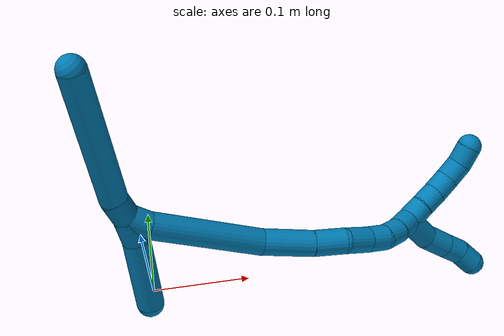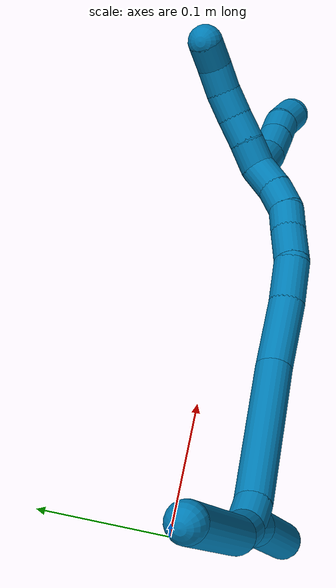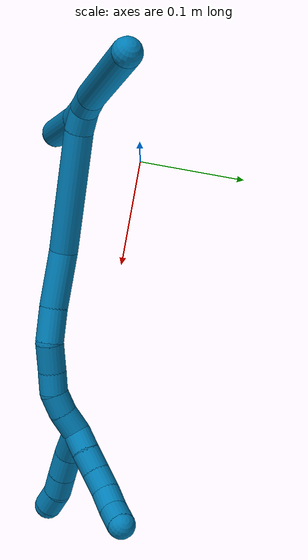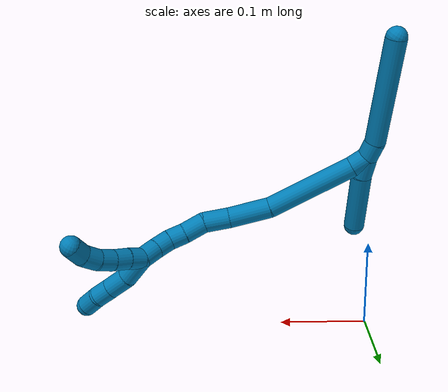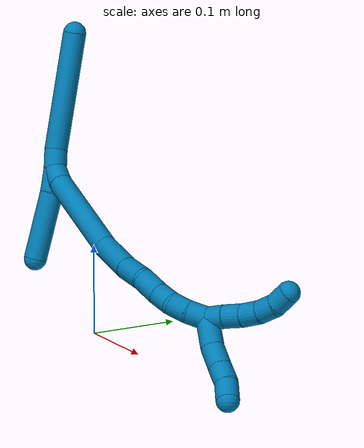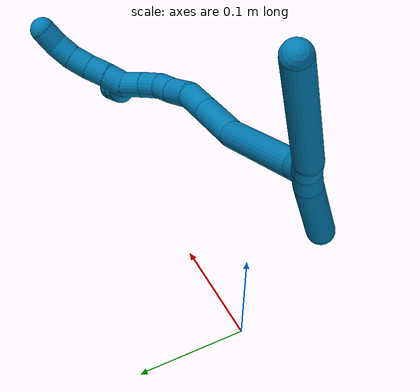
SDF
<sdf version="1.7">
 <world name="default">
  <model name="photoneo_s_sensor">
   <static>1</static>
   <pose>0 0 2 1.57079 1.57079 3.14159</pose>
   <link name="link">
    <inertial><mass>0.1</mass></inertial>
    <sensor name="sensor" type="depth">
     <update_rate>30</update_rate>
     <camera>
      <horizontal_fov>1.22</horizontal_fov>
      <image><width>1920</width><height>1200</height><format>B8G8R8</format></image>
      <clip><near>0.1</near><far>4</far></clip>
      <depth_camera><output>points</output></depth_camera>
     </camera>
     <plugin name="camera_plugin" filename="libgazebo_ros_depth_camera.so">
      <baseline>0.2</baseline>
      <alwaysOn>1</alwaysOn>
      <updateRate>0.0</updateRate>
      <cameraName>camera_ir</cameraName>
      <imageTopicName>/camera/color/image_raw</imageTopicName>
      <cameraInfoTopicName>/camera/color/camera_info</cameraInfoTopicName>
      <depthImageTopicName>/camera/depth/image_raw</depthImageTopicName>
      <depthImageCameraInfoTopicName>/camera/depth/camera_info</depthImageCameraInfoTopicName>
      <pointCloudTopicName>/camera/depth/points</pointCloudTopicName>
      <frameName>fr_optical</frameName>
      <pointCloudCutoff>0.1</pointCloudCutoff>
      <pointCloudCutoffMax>2.0</pointCloudCutoffMax>
      <distortionK1>0</distortionK1>
      <distortionK2>0</distortionK2>
      <distortionK3>0</distortionK3>
      <distortionT1>0</distortionT1>
      <distortionT2>0</distortionT2>
      <CxPrime>0</CxPrime>
      <Cx>0</Cx>
      <Cy>0</Cy>
      <focalLength>0</focalLength>
      <hackBaseline>0</hackBaseline>
     </plugin>
    </sensor>
   </link>
  </model>
  <model name="bin">
   <static>1</static>
   <link name="bottom">
    <collision name="collision-bottom">
     <pose>0 0 -0.01 0 -0 0</pose>
     <geometry><box><size>0.8 0.6 0.02</size></box></geometry>
     <surface>
      <friction><ode><mu>100</mu><mu2>100</mu2></ode></friction>
      <contact><collide_bitmask>65535</collide_bitmask></contact>
     </surface>
    </collision>
   </link>
   <link name="west_wall">
    <collision name="collision-west_wall">
     <pose>-0.41 0 0.1 0 -0 0</pose>
     <geometry><box><size>0.02 0.6 0.2</size></box></geometry>
     <surface>
      <friction><ode><mu>100</mu><mu2>100</mu2></ode></friction>
      <contact><collide_bitmask>65535</collide_bitmask></contact>
     </surface>
    </collision>
   </link>
   <link name="east_wall">
    <collision name="collision-east_wall">
     <pose>0.41 0 0.1 0 -0 0</pose>
     <geometry><box><size>0.02 0.6 0.2</size></box></geometry>
     <surface>
      <friction><ode><mu>100</mu><mu2>100</mu2></ode></friction>
      <contact><collide_bitmask>65535</collide_bitmask></contact>
     </surface>
    </collision>
   </link>
   <link name="south_wall">
    <collision name="collision-south_wall">
     <pose>0 -0.31 0.1 0 -0 0</pose>
     <geometry><box><size>0.8 0.02 0.2</size></box></geometry>
     <surface>
      <friction><ode><mu>100</mu><mu2>100</mu2></ode></friction>
      <contact><collide_bitmask>65535</collide_bitmask></contact>
     </surface>
    </collision>
   </link>
   <link name="north_wall">
    <collision name="collision-north_wall">
     <pose>0 0.31 0.1 0 -0 0</pose>
     <geometry><box><size>0.8 0.02 0.2</size></box></geometry>
     <surface>
      <friction><ode><mu>100</mu><mu2>100</mu2></ode></friction>
      <contact><collide_bitmask>65535</collide_bitmask></contact>
     </surface>
    </collision>
   </link>
  </model>
  <model name="9">
   <static>0</static>
   <link name="9">
    <collision name="collision-cylinder-e_1_2_8">
     <pose>0.000872 -0.000591 0.010801 0.054645 0.080424 0.002199</pose>
     <geometry><cylinder><radius>0.0125</radius><length>0.021705</length></cylinder></geometry>
     <surface>
      <friction><ode><mu>1.16</mu><mu2>1.16</mu2><slip1>0</slip1><slip2>0</slip2></ode></friction>
      <contact><ode><kp>1e+06</kp><kd>1</kd><max_vel>0</max_vel><min_depth>0.001</min_depth></ode></contact>
     </surface>
    </collision>
    <visual name="visual-cylinder-e_1_2_8">
     <pose>0.000872 -0.000591 0.010801 0.054645 0.080424 0.002199</pose>
     <geometry><cylinder><radius>0.0125</radius><length>0.021705</length></cylinder></geometry>
     <material><ambient>0 0.490196 0.709804 1</ambient></material>
    </visual>
    <collision name="collision-cylinder-e_2_8_6">
     <pose>0.020826 -0.01373 0.081547 0.206352 0.302045 0.031512</pose>
     <geometry><cylinder><radius>0.0125</radius><length>0.128295</length></cylinder></geometry>
     <surface>
      <friction><ode><mu>1.16</mu><mu2>1.16</mu2><slip1>0</slip1><slip2>0</slip2></ode></friction>
      <contact><ode><kp>1e+06</kp><kd>1</kd><max_vel>0</max_vel><min_depth>0.001</min_depth></ode></contact>
     </surface>
    </collision>
    <visual name="visual-cylinder-e_2_8_6">
     <pose>0.020826 -0.01373 0.081547 0.206352 0.302045 0.031512</pose>
     <geometry><cylinder><radius>0.0125</radius><length>0.128295</length></cylinder></geometry>
     <material><ambient>0 0.490196 0.709804 1</ambient></material>
    </visual>
    <collision name="collision-cylinder-e_1_2_9">
     <pose>-0.003208 0.001549 -0.012409 -3.01741 -0.251089 2.22618</pose>
     <geometry><cylinder><radius>0.0125</radius><length>0.02582</length></cylinder></geometry>
     <surface>
      <friction><ode><mu>1.16</mu><mu2>1.16</mu2><slip1>0</slip1><slip2>0</slip2></ode></friction>
      <contact><ode><kp>1e+06</kp><kd>1</kd><max_vel>0</max_vel><min_depth>0.001</min_depth></ode></contact>
     </surface>
    </collision>
    <visual name="visual-cylinder-e_1_2_9">
     <pose>-0.003208 0.001549 -0.012409 -3.01741 -0.251089 2.22618</pose>
     <geometry><cylinder><radius>0.0125</radius><length>0.02582</length></cylinder></geometry>
     <material><ambient>0 0.490196 0.709804 1</ambient></material>
    </visual>
    <collision name="collision-cylinder-e_2_9_5">
     <pose>-0.020257 0.00924 -0.058676 -2.96214 -0.382451 2.27151</pose>
     <geometry><cylinder><radius>0.0125</radius><length>0.07418</length></cylinder></geometry>
     <surface>
      <friction><ode><mu>1.16</mu><mu2>1.16</mu2><slip1>0</slip1><slip2>0</slip2></ode></friction>
      <contact><ode><kp>1e+06</kp><kd>1</kd><max_vel>0</max_vel><min_depth>0.001</min_depth></ode></contact>
     </surface>
    </collision>
    <visual name="visual-cylinder-e_2_9_5">
     <pose>-0.020257 0.00924 -0.058676 -2.96214 -0.382451 2.27151</pose>
     <geometry><cylinder><radius>0.0125</radius><length>0.07418</length></cylinder></geometry>
     <material><ambient>0 0.490196 0.709804 1</ambient></material>
    </visual>
    <collision name="collision-cylinder-e_1_2_10">
     <pose>0.004528 -0.002002 -0.009231 2.928 0.447029 2.26023</pose>
     <geometry><cylinder><radius>0.0125</radius><length>0.02095</length></cylinder></geometry>
     <surface>
      <friction><ode><mu>1.16</mu><mu2>1.16</mu2><slip1>0</slip1><slip2>0</slip2></ode></friction>
      <contact><ode><kp>1e+06</kp><kd>1</kd><max_vel>0</max_vel><min_depth>0.001</min_depth></ode></contact>
     </surface>
    </collision>
    <visual name="visual-cylinder-e_1_2_10">
     <pose>0.004528 -0.002002 -0.009231 2.928 0.447029 2.26023</pose>
     <geometry><cylinder><radius>0.0125</radius><length>0.02095</length></cylinder></geometry>
     <material><ambient>0 0.490196 0.709804 1</ambient></material>
    </visual>
    <collision name="collision-cylinder-e_2_10_11">
     <pose>0.041808 -0.013588 -0.060794 2.91894 0.646435 2.49739</pose>
     <geometry><cylinder><radius>0.0125</radius><length>0.108749</length></cylinder></geometry>
     <surface>
      <friction><ode><mu>1.16</mu><mu2>1.16</mu2><slip1>0</slip1><slip2>0</slip2></ode></friction>
      <contact><ode><kp>1e+06</kp><kd>1</kd><max_vel>0</max_vel><min_depth>0.001</min_depth></ode></contact>
     </surface>
    </collision>
    <visual name="visual-cylinder-e_2_10_11">
     <pose>0.041808 -0.013588 -0.060794 2.91894 0.646435 2.49739</pose>
     <geometry><cylinder><radius>0.0125</radius><length>0.108749</length></cylinder></geometry>
     <material><ambient>0 0.490196 0.709804 1</ambient></material>
    </visual>
    <collision name="collision-cylinder-e_3_11_12">
     <pose>0.092004 -0.031177 -0.119289 2.68176 0.768696 2.0924</pose>
     <geometry><cylinder><radius>0.0125</radius><length>0.050183</length></cylinder></geometry>
     <surface>
      <friction><ode><mu>1.16</mu><mu2>1.16</mu2><slip1>0</slip1><slip2>0</slip2></ode></friction>
      <contact><ode><kp>1e+06</kp><kd>1</kd><max_vel>0</max_vel><min_depth>0.001</min_depth></ode></contact>
     </surface>
    </collision>
    <visual name="visual-cylinder-e_3_11_12">
     <pose>0.092004 -0.031177 -0.119289 2.68176 0.768696 2.0924</pose>
     <geometry><cylinder><radius>0.0125</radius><length>0.050183</length></cylinder></geometry>
     <material><ambient>0 0.490196 0.709804 1</ambient></material>
    </visual>
    <collision name="collision-cylinder-e_4_12_13">
     <pose>0.121465 -0.044076 -0.144161 2.62958 0.877206 2.12365</pose>
     <geometry><cylinder><radius>0.0125</radius><length>0.031255</length></cylinder></geometry>
     <surface>
      <friction><ode><mu>1.16</mu><mu2>1.16</mu2><slip1>0</slip1><slip2>0</slip2></ode></friction>
      <contact><ode><kp>1e+06</kp><kd>1</kd><max_vel>0</max_vel><min_depth>0.001</min_depth></ode></contact>
     </surface>
    </collision>
    <visual name="visual-cylinder-e_4_12_13">
     <pose>0.121465 -0.044076 -0.144161 2.62958 0.877206 2.12365</pose>
     <geometry><cylinder><radius>0.0125</radius><length>0.031255</length></cylinder></geometry>
     <material><ambient>0 0.490196 0.709804 1</ambient></material>
    </visual>
    <collision name="collision-cylinder-e_5_13_14">
     <pose>0.142888 -0.04923 -0.162175 3.11379 0.790668 3.07498</pose>
     <geometry><cylinder><radius>0.0125</radius><length>0.026465</length></cylinder></geometry>
     <surface>
      <friction><ode><mu>1.16</mu><mu2>1.16</mu2><slip1>0</slip1><slip2>0</slip2></ode></friction>
      <contact><ode><kp>1e+06</kp><kd>1</kd><max_vel>0</max_vel><min_depth>0.001</min_depth></ode></contact>
     </surface>
    </collision>
    <visual name="visual-cylinder-e_5_13_14">
     <pose>0.142888 -0.04923 -0.162175 3.11379 0.790668 3.07498</pose>
     <geometry><cylinder><radius>0.0125</radius><length>0.026465</length></cylinder></geometry>
     <material><ambient>0 0.490196 0.709804 1</ambient></material>
    </visual>
    <collision name="collision-cylinder-e_6_14_15">
     <pose>0.160129 -0.05027 -0.177914 3.02083 0.87965 2.88604</pose>
     <geometry><cylinder><radius>0.0125</radius><length>0.02034</length></cylinder></geometry>
     <surface>
      <friction><ode><mu>1.16</mu><mu2>1.16</mu2><slip1>0</slip1><slip2>0</slip2></ode></friction>
      <contact><ode><kp>1e+06</kp><kd>1</kd><max_vel>0</max_vel><min_depth>0.001</min_depth></ode></contact>
     </surface>
    </collision>
    <visual name="visual-cylinder-e_6_14_15">
     <pose>0.160129 -0.05027 -0.177914 3.02083 0.87965 2.88604</pose>
     <geometry><cylinder><radius>0.0125</radius><length>0.02034</length></cylinder></geometry>
     <material><ambient>0 0.490196 0.709804 1</ambient></material>
    </visual>
    <collision name="collision-cylinder-e_7_15_16">
     <pose>0.176354 -0.048804 -0.189409 -2.72368 0.987412 -2.39088</pose>
     <geometry><cylinder><radius>0.0125</radius><length>0.020101</length></cylinder></geometry>
     <surface>
      <friction><ode><mu>1.16</mu><mu2>1.16</mu2><slip1>0</slip1><slip2>0</slip2></ode></friction>
      <contact><ode><kp>1e+06</kp><kd>1</kd><max_vel>0</max_vel><min_depth>0.001</min_depth></ode></contact>
     </surface>
    </collision>
    <visual name="visual-cylinder-e_7_15_16">
     <pose>0.176354 -0.048804 -0.189409 -2.72368 0.987412 -2.39088</pose>
     <geometry><cylinder><radius>0.0125</radius><length>0.020101</length></cylinder></geometry>
     <material><ambient>0 0.490196 0.709804 1</ambient></material>
    </visual>
    <collision name="collision-cylinder-e_8_16_1">
     <pose>0.194128 -0.042611 -0.198575 -2.37614 1.02547 -1.9</pose>
     <geometry><cylinder><radius>0.0125</radius><length>0.021958</length></cylinder></geometry>
     <surface>
      <friction><ode><mu>1.16</mu><mu2>1.16</mu2><slip1>0</slip1><slip2>0</slip2></ode></friction>
      <contact><ode><kp>1e+06</kp><kd>1</kd><max_vel>0</max_vel><min_depth>0.001</min_depth></ode></contact>
     </surface>
    </collision>
    <visual name="visual-cylinder-e_8_16_1">
     <pose>0.194128 -0.042611 -0.198575 -2.37614 1.02547 -1.9</pose>
     <geometry><cylinder><radius>0.0125</radius><length>0.021958</length></cylinder></geometry>
     <material><ambient>0 0.490196 0.709804 1</ambient></material>
    </visual>
    <collision name="collision-cylinder-e_1_1_17">
     <pose>0.206544 -0.039259 -0.218693 3.10451 0.186875 2.75084</pose>
     <geometry><cylinder><radius>0.0125</radius><length>0.032614</length></cylinder></geometry>
     <surface>
      <friction><ode><mu>1.16</mu><mu2>1.16</mu2><slip1>0</slip1><slip2>0</slip2></ode></friction>
      <contact><ode><kp>1e+06</kp><kd>1</kd><max_vel>0</max_vel><min_depth>0.001</min_depth></ode></contact>
     </surface>
    </collision>
    <visual name="visual-cylinder-e_1_1_17">
     <pose>0.206544 -0.039259 -0.218693 3.10451 0.186875 2.75084</pose>
     <geometry><cylinder><radius>0.0125</radius><length>0.032614</length></cylinder></geometry>
     <material><ambient>0 0.490196 0.709804 1</ambient></material>
    </visual>
    <collision name="collision-cylinder-e_2_17_18">
     <pose>0.214921 -0.042144 -0.246324 2.94692 0.424111 2.28999</pose>
     <geometry><cylinder><radius>0.0125</radius><length>0.025987</length></cylinder></geometry>
     <surface>
      <friction><ode><mu>1.16</mu><mu2>1.16</mu2><slip1>0</slip1><slip2>0</slip2></ode></friction>
      <contact><ode><kp>1e+06</kp><kd>1</kd><max_vel>0</max_vel><min_depth>0.001</min_depth></ode></contact>
     </surface>
    </collision>
    <visual name="visual-cylinder-e_2_17_18">
     <pose>0.214921 -0.042144 -0.246324 2.94692 0.424111 2.28999</pose>
     <geometry><cylinder><radius>0.0125</radius><length>0.025987</length></cylinder></geometry>
     <material><ambient>0 0.490196 0.709804 1</ambient></material>
    </visual>
    <collision name="collision-cylinder-e_3_18_19">
     <pose>0.224644 -0.046195 -0.266976 2.94921 0.443829 2.33337</pose>
     <geometry><cylinder><radius>0.0125</radius><length>0.02038</length></cylinder></geometry>
     <surface>
      <friction><ode><mu>1.16</mu><mu2>1.16</mu2><slip1>0</slip1><slip2>0</slip2></ode></friction>
      <contact><ode><kp>1e+06</kp><kd>1</kd><max_vel>0</max_vel><min_depth>0.001</min_depth></ode></contact>
     </surface>
    </collision>
    <visual name="visual-cylinder-e_3_18_19">
     <pose>0.224644 -0.046195 -0.266976 2.94921 0.443829 2.33337</pose>
     <geometry><cylinder><radius>0.0125</radius><length>0.02038</length></cylinder></geometry>
     <material><ambient>0 0.490196 0.709804 1</ambient></material>
    </visual>
    <collision name="collision-cylinder-e_4_19_4">
     <pose>0.231011 -0.05062 -0.285977 2.88028 0.190673 1.25818</pose>
     <geometry><cylinder><radius>0.0125</radius><length>0.021019</length></cylinder></geometry>
     <surface>
      <friction><ode><mu>1.16</mu><mu2>1.16</mu2><slip1>0</slip1><slip2>0</slip2></ode></friction>
      <contact><ode><kp>1e+06</kp><kd>1</kd><max_vel>0</max_vel><min_depth>0.001</min_depth></ode></contact>
     </surface>
    </collision>
    <visual name="visual-cylinder-e_4_19_4">
     <pose>0.231011 -0.05062 -0.285977 2.88028 0.190673 1.25818</pose>
     <geometry><cylinder><radius>0.0125</radius><length>0.021019</length></cylinder></geometry>
     <material><ambient>0 0.490196 0.709804 1</ambient></material>
    </visual>
    <collision name="collision-cylinder-e_1_1_20">
     <pose>0.213514 -0.038564 -0.202765 -2.26142 1.55762 -2.25122</pose>
     <geometry><cylinder><radius>0.0125</radius><length>0.02</length></cylinder></geometry>
     <surface>
      <friction><ode><mu>1.16</mu><mu2>1.16</mu2><slip1>0</slip1><slip2>0</slip2></ode></friction>
      <contact><ode><kp>1e+06</kp><kd>1</kd><max_vel>0</max_vel><min_depth>0.001</min_depth></ode></contact>
     </surface>
    </collision>
    <visual name="visual-cylinder-e_1_1_20">
     <pose>0.213514 -0.038564 -0.202765 -2.26142 1.55762 -2.25122</pose>
     <geometry><cylinder><radius>0.0125</radius><length>0.02</length></cylinder></geometry>
     <material><ambient>0 0.490196 0.709804 1</ambient></material>
    </visual>
    <collision name="collision-cylinder-e_2_20_21">
     <pose>0.23347 -0.037776 -0.203472 -2.30777 1.47797 -2.23679</pose>
     <geometry><cylinder><radius>0.0125</radius><length>0.02</length></cylinder></geometry>
     <surface>
      <friction><ode><mu>1.16</mu><mu2>1.16</mu2><slip1>0</slip1><slip2>0</slip2></ode></friction>
      <contact><ode><kp>1e+06</kp><kd>1</kd><max_vel>0</max_vel><min_depth>0.001</min_depth></ode></contact>
     </surface>
    </collision>
    <visual name="visual-cylinder-e_2_20_21">
     <pose>0.23347 -0.037776 -0.203472 -2.30777 1.47797 -2.23679</pose>
     <geometry><cylinder><radius>0.0125</radius><length>0.02</length></cylinder></geometry>
     <material><ambient>0 0.490196 0.709804 1</ambient></material>
    </visual>
    <collision name="collision-cylinder-e_3_21_22">
     <pose>0.253414 -0.037004 -0.203602 -0.170435 1.52072 -0.162144</pose>
     <geometry><cylinder><radius>0.0125</radius><length>0.02</length></cylinder></geometry>
     <surface>
      <friction><ode><mu>1.16</mu><mu2>1.16</mu2><slip1>0</slip1><slip2>0</slip2></ode></friction>
      <contact><ode><kp>1e+06</kp><kd>1</kd><max_vel>0</max_vel><min_depth>0.001</min_depth></ode></contact>
     </surface>
    </collision>
    <visual name="visual-cylinder-e_3_21_22">
     <pose>0.253414 -0.037004 -0.203602 -0.170435 1.52072 -0.162144</pose>
     <geometry><cylinder><radius>0.0125</radius><length>0.02</length></cylinder></geometry>
     <material><ambient>0 0.490196 0.709804 1</ambient></material>
    </visual>
    <collision name="collision-cylinder-e_4_22_23">
     <pose>0.273092 -0.038191 -0.20099 0.540732 1.32115 0.424229</pose>
     <geometry><cylinder><radius>0.0125</radius><length>0.02</length></cylinder></geometry>
     <surface>
      <friction><ode><mu>1.16</mu><mu2>1.16</mu2><slip1>0</slip1><slip2>0</slip2></ode></friction>
      <contact><ode><kp>1e+06</kp><kd>1</kd><max_vel>0</max_vel><min_depth>0.001</min_depth></ode></contact>
     </surface>
    </collision>
    <visual name="visual-cylinder-e_4_22_23">
     <pose>0.273092 -0.038191 -0.20099 0.540732 1.32115 0.424229</pose>
     <geometry><cylinder><radius>0.0125</radius><length>0.02</length></cylinder></geometry>
     <material><ambient>0 0.490196 0.709804 1</ambient></material>
    </visual>
    <collision name="collision-cylinder-e_5_23_3">
     <pose>0.291265 -0.041285 -0.1939 0.351178 1.01272 0.196156</pose>
     <geometry><cylinder><radius>0.0125</radius><length>0.02</length></cylinder></geometry>
     <surface>
      <friction><ode><mu>1.16</mu><mu2>1.16</mu2><slip1>0</slip1><slip2>0</slip2></ode></friction>
      <contact><ode><kp>1e+06</kp><kd>1</kd><max_vel>0</max_vel><min_depth>0.001</min_depth></ode></contact>
     </surface>
    </collision>
    <visual name="visual-cylinder-e_5_23_3">
     <pose>0.291265 -0.041285 -0.1939 0.351178 1.01272 0.196156</pose>
     <geometry><cylinder><radius>0.0125</radius><length>0.02</length></cylinder></geometry>
     <material><ambient>0 0.490196 0.709804 1</ambient></material>
    </visual>
    <collision name="collision-sphere-3">
     <pose>0.299747 -0.043107 -0.188927 0 -0 0</pose>
     <geometry><sphere><radius>0.0125</radius></sphere></geometry>
     <surface>
      <friction><ode><mu>1.16</mu><mu2>1.16</mu2><slip1>0</slip1><slip2>0</slip2></ode></friction>
      <contact><ode><kp>1e+06</kp><kd>1</kd><max_vel>0</max_vel><min_depth>0.001</min_depth></ode></contact>
     </surface>
    </collision>
    <visual name="visual-sphere-3">
     <pose>0.299747 -0.043107 -0.188927 0 -0 0</pose>
     <geometry><sphere><radius>0.0125</radius></sphere></geometry>
     <material><ambient>0 0.490196 0.709804 1</ambient></material>
    </visual>
    <collision name="collision-sphere-23">
     <pose>0.282782 -0.039463 -0.198872 0 -0 0</pose>
     <geometry><sphere><radius>0.0125</radius></sphere></geometry>
     <surface>
      <friction><ode><mu>1.16</mu><mu2>1.16</mu2><slip1>0</slip1><slip2>0</slip2></ode></friction>
      <contact><ode><kp>1e+06</kp><kd>1</kd><max_vel>0</max_vel><min_depth>0.001</min_depth></ode></contact>
     </surface>
    </collision>
    <visual name="visual-sphere-23">
     <pose>0.282782 -0.039463 -0.198872 0 -0 0</pose>
     <geometry><sphere><radius>0.0125</radius></sphere></geometry>
     <material><ambient>0 0.490196 0.709804 1</ambient></material>
    </visual>
    <collision name="collision-sphere-22">
     <pose>0.263402 -0.03692 -0.203108 0 -0 0</pose>
     <geometry><sphere><radius>0.0125</radius></sphere></geometry>
     <surface>
      <friction><ode><mu>1.16</mu><mu2>1.16</mu2><slip1>0</slip1><slip2>0</slip2></ode></friction>
      <contact><ode><kp>1e+06</kp><kd>1</kd><max_vel>0</max_vel><min_depth>0.001</min_depth></ode></contact>
     </surface>
    </collision>
    <visual name="visual-sphere-22">
     <pose>0.263402 -0.03692 -0.203108 0 -0 0</pose>
     <geometry><sphere><radius>0.0125</radius></sphere></geometry>
     <material><ambient>0 0.490196 0.709804 1</ambient></material>
    </visual>
    <collision name="collision-sphere-21">
     <pose>0.243427 -0.037089 -0.204095 0 -0 0</pose>
     <geometry><sphere><radius>0.0125</radius></sphere></geometry>
     <surface>
      <friction><ode><mu>1.16</mu><mu2>1.16</mu2><slip1>0</slip1><slip2>0</slip2></ode></friction>
      <contact><ode><kp>1e+06</kp><kd>1</kd><max_vel>0</max_vel><min_depth>0.001</min_depth></ode></contact>
     </surface>
    </collision>
    <visual name="visual-sphere-21">
     <pose>0.243427 -0.037089 -0.204095 0 -0 0</pose>
     <geometry><sphere><radius>0.0125</radius></sphere></geometry>
     <material><ambient>0 0.490196 0.709804 1</ambient></material>
    </visual>
    <collision name="collision-sphere-20">
     <pose>0.223513 -0.038462 -0.202849 0 -0 0</pose>
     <geometry><sphere><radius>0.0125</radius></sphere></geometry>
     <surface>
      <friction><ode><mu>1.16</mu><mu2>1.16</mu2><slip1>0</slip1><slip2>0</slip2></ode></friction>
      <contact><ode><kp>1e+06</kp><kd>1</kd><max_vel>0</max_vel><min_depth>0.001</min_depth></ode></contact>
     </surface>
    </collision>
    <visual name="visual-sphere-20">
     <pose>0.223513 -0.038462 -0.202849 0 -0 0</pose>
     <geometry><sphere><radius>0.0125</radius></sphere></geometry>
     <material><ambient>0 0.490196 0.709804 1</ambient></material>
    </visual>
    <collision name="collision-sphere-4">
     <pose>0.233003 -0.053286 -0.295946 0 -0 0</pose>
     <geometry><sphere><radius>0.0125</radius></sphere></geometry>
     <surface>
      <friction><ode><mu>1.16</mu><mu2>1.16</mu2><slip1>0</slip1><slip2>0</slip2></ode></friction>
      <contact><ode><kp>1e+06</kp><kd>1</kd><max_vel>0</max_vel><min_depth>0.001</min_depth></ode></contact>
     </surface>
    </collision>
    <visual name="visual-sphere-4">
     <pose>0.233003 -0.053286 -0.295946 0 -0 0</pose>
     <geometry><sphere><radius>0.0125</radius></sphere></geometry>
     <material><ambient>0 0.490196 0.709804 1</ambient></material>
    </visual>
    <collision name="collision-sphere-10">
     <pose>0.009056 -0.004004 -0.018462 0 -0 0</pose>
     <geometry><sphere><radius>0.0125</radius></sphere></geometry>
     <surface>
      <friction><ode><mu>1.16</mu><mu2>1.16</mu2><slip1>0</slip1><slip2>0</slip2></ode></friction>
      <contact><ode><kp>1e+06</kp><kd>1</kd><max_vel>0</max_vel><min_depth>0.001</min_depth></ode></contact>
     </surface>
    </collision>
    <visual name="visual-sphere-10">
     <pose>0.009056 -0.004004 -0.018462 0 -0 0</pose>
     <geometry><sphere><radius>0.0125</radius></sphere></geometry>
     <material><ambient>0 0.490196 0.709804 1</ambient></material>
    </visual>
    <collision name="collision-sphere-5">
     <pose>-0.034099 0.015382 -0.092533 0 -0 0</pose>
     <geometry><sphere><radius>0.0125</radius></sphere></geometry>
     <surface>
      <friction><ode><mu>1.16</mu><mu2>1.16</mu2><slip1>0</slip1><slip2>0</slip2></ode></friction>
      <contact><ode><kp>1e+06</kp><kd>1</kd><max_vel>0</max_vel><min_depth>0.001</min_depth></ode></contact>
     </surface>
    </collision>
    <visual name="visual-sphere-5">
     <pose>-0.034099 0.015382 -0.092533 0 -0 0</pose>
     <geometry><sphere><radius>0.0125</radius></sphere></geometry>
     <material><ambient>0 0.490196 0.709804 1</ambient></material>
    </visual>
    <collision name="collision-sphere-6">
     <pose>0.039908 -0.026278 0.141491 0 -0 0</pose>
     <geometry><sphere><radius>0.0125</radius></sphere></geometry>
     <surface>
      <friction><ode><mu>1.16</mu><mu2>1.16</mu2><slip1>0</slip1><slip2>0</slip2></ode></friction>
      <contact><ode><kp>1e+06</kp><kd>1</kd><max_vel>0</max_vel><min_depth>0.001</min_depth></ode></contact>
     </surface>
    </collision>
    <visual name="visual-sphere-6">
     <pose>0.039908 -0.026278 0.141491 0 -0 0</pose>
     <geometry><sphere><radius>0.0125</radius></sphere></geometry>
     <material><ambient>0 0.490196 0.709804 1</ambient></material>
    </visual>
    <collision name="collision-sphere-9">
     <pose>-0.006415 0.003098 -0.024818 0 -0 0</pose>
     <geometry><sphere><radius>0.0125</radius></sphere></geometry>
     <surface>
      <friction><ode><mu>1.16</mu><mu2>1.16</mu2><slip1>0</slip1><slip2>0</slip2></ode></friction>
      <contact><ode><kp>1e+06</kp><kd>1</kd><max_vel>0</max_vel><min_depth>0.001</min_depth></ode></contact>
     </surface>
    </collision>
    <visual name="visual-sphere-9">
     <pose>-0.006415 0.003098 -0.024818 0 -0 0</pose>
     <geometry><sphere><radius>0.0125</radius></sphere></geometry>
     <material><ambient>0 0.490196 0.709804 1</ambient></material>
    </visual>
    <collision name="collision-sphere-2">
     <geometry><sphere><radius>0.0125</radius></sphere></geometry>
     <surface>
      <friction><ode><mu>1.16</mu><mu2>1.16</mu2><slip1>0</slip1><slip2>0</slip2></ode></friction>
      <contact><ode><kp>1e+06</kp><kd>1</kd><max_vel>0</max_vel><min_depth>0.001</min_depth></ode></contact>
     </surface>
    </collision>
    <visual name="visual-sphere-2">
     <geometry><sphere><radius>0.0125</radius></sphere></geometry>
     <material><ambient>0 0.490196 0.709804 1</ambient></material>
    </visual>
    <collision name="collision-sphere-19">
     <pose>0.229019 -0.047954 -0.276009 0 -0 0</pose>
     <geometry><sphere><radius>0.0125</radius></sphere></geometry>
     <surface>
      <friction><ode><mu>1.16</mu><mu2>1.16</mu2><slip1>0</slip1><slip2>0</slip2></ode></friction>
      <contact><ode><kp>1e+06</kp><kd>1</kd><max_vel>0</max_vel><min_depth>0.001</min_depth></ode></contact>
     </surface>
    </collision>
    <visual name="visual-sphere-19">
     <pose>0.229019 -0.047954 -0.276009 0 -0 0</pose>
     <geometry><sphere><radius>0.0125</radius></sphere></geometry>
     <material><ambient>0 0.490196 0.709804 1</ambient></material>
    </visual>
    <collision name="collision-sphere-8">
     <pose>0.001744 -0.001182 0.021602 0 -0 0</pose>
     <geometry><sphere><radius>0.0125</radius></sphere></geometry>
     <surface>
      <friction><ode><mu>1.16</mu><mu2>1.16</mu2><slip1>0</slip1><slip2>0</slip2></ode></friction>
      <contact><ode><kp>1e+06</kp><kd>1</kd><max_vel>0</max_vel><min_depth>0.001</min_depth></ode></contact>
     </surface>
    </collision>
    <visual name="visual-sphere-8">
     <pose>0.001744 -0.001182 0.021602 0 -0 0</pose>
     <geometry><sphere><radius>0.0125</radius></sphere></geometry>
     <material><ambient>0 0.490196 0.709804 1</ambient></material>
    </visual>
    <collision name="collision-sphere-11">
     <pose>0.07456 -0.023172 -0.103126 0 -0 0</pose>
     <geometry><sphere><radius>0.0125</radius></sphere></geometry>
     <surface>
      <friction><ode><mu>1.16</mu><mu2>1.16</mu2><slip1>0</slip1><slip2>0</slip2></ode></friction>
      <contact><ode><kp>1e+06</kp><kd>1</kd><max_vel>0</max_vel><min_depth>0.001</min_depth></ode></contact>
     </surface>
    </collision>
    <visual name="visual-sphere-11">
     <pose>0.07456 -0.023172 -0.103126 0 -0 0</pose>
     <geometry><sphere><radius>0.0125</radius></sphere></geometry>
     <material><ambient>0 0.490196 0.709804 1</ambient></material>
    </visual>
    <collision name="collision-sphere-12">
     <pose>0.109448 -0.039182 -0.135452 0 -0 0</pose>
     <geometry><sphere><radius>0.0125</radius></sphere></geometry>
     <surface>
      <friction><ode><mu>1.16</mu><mu2>1.16</mu2><slip1>0</slip1><slip2>0</slip2></ode></friction>
      <contact><ode><kp>1e+06</kp><kd>1</kd><max_vel>0</max_vel><min_depth>0.001</min_depth></ode></contact>
     </surface>
    </collision>
    <visual name="visual-sphere-12">
     <pose>0.109448 -0.039182 -0.135452 0 -0 0</pose>
     <geometry><sphere><radius>0.0125</radius></sphere></geometry>
     <material><ambient>0 0.490196 0.709804 1</ambient></material>
    </visual>
    <collision name="collision-sphere-13">
     <pose>0.133482 -0.048971 -0.152871 0 -0 0</pose>
     <geometry><sphere><radius>0.0125</radius></sphere></geometry>
     <surface>
      <friction><ode><mu>1.16</mu><mu2>1.16</mu2><slip1>0</slip1><slip2>0</slip2></ode></friction>
      <contact><ode><kp>1e+06</kp><kd>1</kd><max_vel>0</max_vel><min_depth>0.001</min_depth></ode></contact>
     </surface>
    </collision>
    <visual name="visual-sphere-13">
     <pose>0.133482 -0.048971 -0.152871 0 -0 0</pose>
     <geometry><sphere><radius>0.0125</radius></sphere></geometry>
     <material><ambient>0 0.490196 0.709804 1</ambient></material>
    </visual>
    <collision name="collision-sphere-14">
     <pose>0.152294 -0.049489 -0.171478 0 -0 0</pose>
     <geometry><sphere><radius>0.0125</radius></sphere></geometry>
     <surface>
      <friction><ode><mu>1.16</mu><mu2>1.16</mu2><slip1>0</slip1><slip2>0</slip2></ode></friction>
      <contact><ode><kp>1e+06</kp><kd>1</kd><max_vel>0</max_vel><min_depth>0.001</min_depth></ode></contact>
     </surface>
    </collision>
    <visual name="visual-sphere-14">
     <pose>0.152294 -0.049489 -0.171478 0 -0 0</pose>
     <geometry><sphere><radius>0.0125</radius></sphere></geometry>
     <material><ambient>0 0.490196 0.709804 1</ambient></material>
    </visual>
    <collision name="collision-sphere-15">
     <pose>0.167965 -0.051051 -0.184349 0 -0 0</pose>
     <geometry><sphere><radius>0.0125</radius></sphere></geometry>
     <surface>
      <friction><ode><mu>1.16</mu><mu2>1.16</mu2><slip1>0</slip1><slip2>0</slip2></ode></friction>
      <contact><ode><kp>1e+06</kp><kd>1</kd><max_vel>0</max_vel><min_depth>0.001</min_depth></ode></contact>
     </surface>
    </collision>
    <visual name="visual-sphere-15">
     <pose>0.167965 -0.051051 -0.184349 0 -0 0</pose>
     <geometry><sphere><radius>0.0125</radius></sphere></geometry>
     <material><ambient>0 0.490196 0.709804 1</ambient></material>
    </visual>
    <collision name="collision-sphere-16">
     <pose>0.184742 -0.046557 -0.194468 0 -0 0</pose>
     <geometry><sphere><radius>0.0125</radius></sphere></geometry>
     <surface>
      <friction><ode><mu>1.16</mu><mu2>1.16</mu2><slip1>0</slip1><slip2>0</slip2></ode></friction>
      <contact><ode><kp>1e+06</kp><kd>1</kd><max_vel>0</max_vel><min_depth>0.001</min_depth></ode></contact>
     </surface>
    </collision>
    <visual name="visual-sphere-16">
     <pose>0.184742 -0.046557 -0.194468 0 -0 0</pose>
     <geometry><sphere><radius>0.0125</radius></sphere></geometry>
     <material><ambient>0 0.490196 0.709804 1</ambient></material>
    </visual>
    <collision name="collision-sphere-1">
     <pose>0.203515 -0.038665 -0.202681 0 -0 0</pose>
     <geometry><sphere><radius>0.0125</radius></sphere></geometry>
     <surface>
      <friction><ode><mu>1.16</mu><mu2>1.16</mu2><slip1>0</slip1><slip2>0</slip2></ode></friction>
      <contact><ode><kp>1e+06</kp><kd>1</kd><max_vel>0</max_vel><min_depth>0.001</min_depth></ode></contact>
     </surface>
    </collision>
    <visual name="visual-sphere-1">
     <pose>0.203515 -0.038665 -0.202681 0 -0 0</pose>
     <geometry><sphere><radius>0.0125</radius></sphere></geometry>
     <material><ambient>0 0.490196 0.709804 1</ambient></material>
    </visual>
    <collision name="collision-sphere-18">
     <pose>0.220268 -0.044435 -0.257943 0 -0 0</pose>
     <geometry><sphere><radius>0.0125</radius></sphere></geometry>
     <surface>
      <friction><ode><mu>1.16</mu><mu2>1.16</mu2><slip1>0</slip1><slip2>0</slip2></ode></friction>
      <contact><ode><kp>1e+06</kp><kd>1</kd><max_vel>0</max_vel><min_depth>0.001</min_depth></ode></contact>
     </surface>
    </collision>
    <visual name="visual-sphere-18">
     <pose>0.220268 -0.044435 -0.257943 0 -0 0</pose>
     <geometry><sphere><radius>0.0125</radius></sphere></geometry>
     <material><ambient>0 0.490196 0.709804 1</ambient></material>
    </visual>
    <collision name="collision-sphere-17">
     <pose>0.209574 -0.039853 -0.234705 0 -0 0</pose>
     <geometry><sphere><radius>0.0125</radius></sphere></geometry>
     <surface>
      <friction><ode><mu>1.16</mu><mu2>1.16</mu2><slip1>0</slip1><slip2>0</slip2></ode></friction>
      <contact><ode><kp>1e+06</kp><kd>1</kd><max_vel>0</max_vel><min_depth>0.001</min_depth></ode></contact>
     </surface>
    </collision>
    <visual name="visual-sphere-17">
     <pose>0.209574 -0.039853 -0.234705 0 -0 0</pose>
     <geometry><sphere><radius>0.0125</radius></sphere></geometry>
     <material><ambient>0 0.490196 0.709804 1</ambient></material>
    </visual>
    <inertial>
     <pose>0.101409 -0.023987 -0.096575 0 -0 0</pose>
     <mass>0.75</mass>
     <inertia>
      <ixx>0.000194</ixx>
      <ixy>0</ixy>
      <ixz>0</ixz>
      <iyy>0.000432</iyy>
      <iyz>0</iyz>
      <izz>-9.8e-05</izz>
     </inertia>
    </inertial>
   </link>
   <pose>-0.001908 -0.046464 0.190887 -0.457577 -0.244144 0.621507</pose>
  </model>
 </world>
</sdf>
